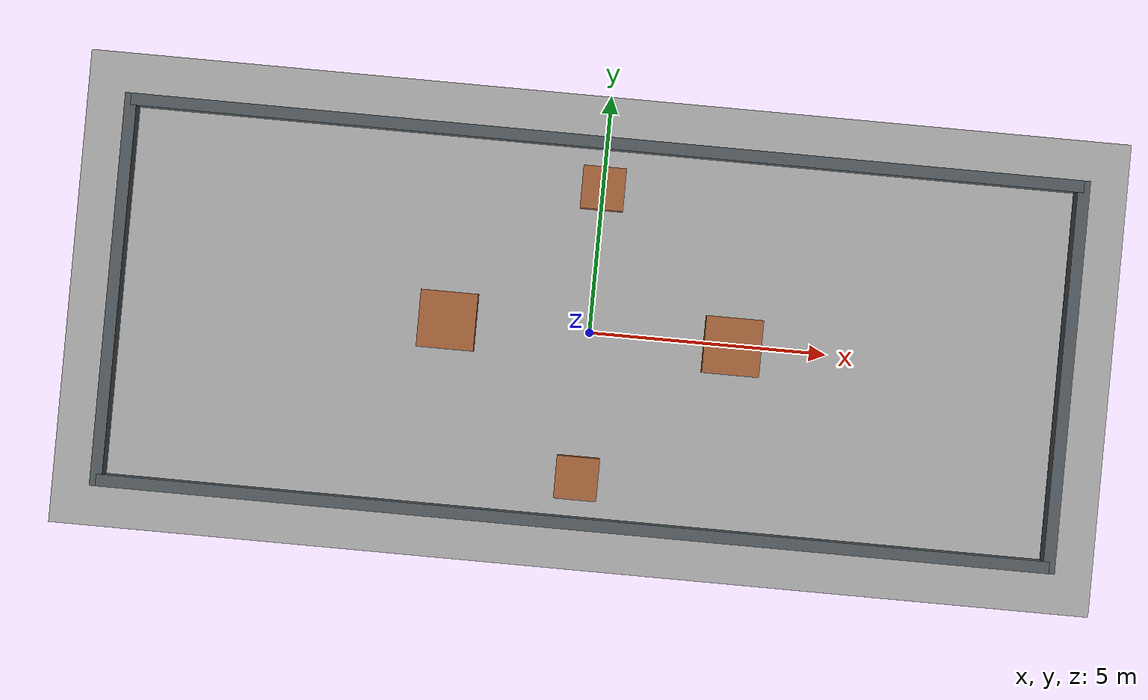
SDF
<?xml version="1.0"?>
<sdf version="1.6">
  <world name="default">
    <gravity>0 0 -9.8</gravity>
    <physics default="0" name="default_physics" type="ode">
      <max_step_size>0.001</max_step_size>
      <real_time_factor>1</real_time_factor>
      <real_time_update_rate>1000</real_time_update_rate>
    </physics>

    <include>
      <uri>model://sun</uri>
    </include>

    <model name="ground_plane">
      <static>true</static>
      <link name="link">
        <collision name="collision">
          <geometry>
            <box>
              <size>22 10 0.02</size>
            </box>
          </geometry>
        </collision>
        <visual name="visual">
          <geometry>
            <box>
              <size>22 10 0.02</size>
            </box>
          </geometry>
          <material>
            <ambient>0.72 0.72 0.72 1</ambient>
            <diffuse>0.72 0.72 0.72 1</diffuse>
          </material>
        </visual>
      </link>
    </model>

    <model name="corridor_wall_north">
      <static>true</static>
      <pose>0 4.00 0.5 0 0 0</pose>
      <link name="link">
        <collision name="collision">
          <geometry>
            <box>
              <size>20 0.25 1.0</size>
            </box>
          </geometry>
        </collision>
        <visual name="visual">
          <geometry>
            <box>
              <size>20 0.25 1.0</size>
            </box>
          </geometry>
          <material>
            <ambient>0.35 0.38 0.40 1</ambient>
            <diffuse>0.35 0.38 0.40 1</diffuse>
          </material>
        </visual>
      </link>
    </model>

    <model name="corridor_wall_south">
      <static>true</static>
      <pose>0 -4.00 0.5 0 0 0</pose>
      <link name="link">
        <collision name="collision">
          <geometry>
            <box>
              <size>20 0.25 1.0</size>
            </box>
          </geometry>
        </collision>
        <visual name="visual">
          <geometry>
            <box>
              <size>20 0.25 1.0</size>
            </box>
          </geometry>
          <material>
            <ambient>0.35 0.38 0.40 1</ambient>
            <diffuse>0.35 0.38 0.40 1</diffuse>
          </material>
        </visual>
      </link>
    </model>

    <model name="corridor_end_west">
      <static>true</static>
      <pose>-10 0 0.5 0 0 0</pose>
      <link name="link">
        <collision name="collision">
          <geometry>
            <box>
              <size>0.25 8.25 1.0</size>
            </box>
          </geometry>
        </collision>
        <visual name="visual">
          <geometry>
            <box>
              <size>0.25 8.25 1.0</size>
            </box>
          </geometry>
          <material>
            <ambient>0.35 0.38 0.40 1</ambient>
            <diffuse>0.35 0.38 0.40 1</diffuse>
          </material>
        </visual>
      </link>
    </model>

    <model name="corridor_end_east">
      <static>true</static>
      <pose>10 0 0.5 0 0 0</pose>
      <link name="link">
        <collision name="collision">
          <geometry>
            <box>
              <size>0.25 8.25 1.0</size>
            </box>
          </geometry>
        </collision>
        <visual name="visual">
          <geometry>
            <box>
              <size>0.25 8.25 1.0</size>
            </box>
          </geometry>
          <material>
            <ambient>0.35 0.38 0.40 1</ambient>
            <diffuse>0.35 0.38 0.40 1</diffuse>
          </material>
        </visual>
      </link>
    </model>

    <model name="obstacle_center_top">
      <static>true</static>
      <pose>-3.0 0.0 0.45 0 0 0</pose>
      <link name="link">
        <collision name="collision">
          <geometry>
            <box>
              <size>1.2 1.2 0.9</size>
            </box>
          </geometry>
        </collision>
        <visual name="visual">
          <geometry>
            <box>
              <size>1.2 1.2 0.9</size>
            </box>
          </geometry>
          <material>
            <ambient>0.70 0.42 0.25 1</ambient>
            <diffuse>0.70 0.42 0.25 1</diffuse>
          </material>
        </visual>
      </link>
    </model>

    <model name="obstacle_center_bottom">
      <static>true</static>
      <pose>3.0 0.0 0.45 0 0 0</pose>
      <link name="link">
        <collision name="collision">
          <geometry>
            <box>
              <size>1.2 1.2 0.9</size>
            </box>
          </geometry>
        </collision>
        <visual name="visual">
          <geometry>
            <box>
              <size>1.2 1.2 0.9</size>
            </box>
          </geometry>
          <material>
            <ambient>0.70 0.42 0.25 1</ambient>
            <diffuse>0.70 0.42 0.25 1</diffuse>
          </material>
        </visual>
      </link>
    </model>

    <model name="obstacle_left_bottom">
      <static>true</static>
      <pose>0.0 -3.05 0.45 0 0 0</pose>
      <link name="link">
        <collision name="collision">
          <geometry>
            <box>
              <size>0.9 0.9 0.9</size>
            </box>
          </geometry>
        </collision>
        <visual name="visual">
          <geometry>
            <box>
              <size>0.9 0.9 0.9</size>
            </box>
          </geometry>
          <material>
            <ambient>0.70 0.42 0.25 1</ambient>
            <diffuse>0.70 0.42 0.25 1</diffuse>
          </material>
        </visual>
      </link>
    </model>

    <model name="obstacle_right_top">
      <static>true</static>
      <pose>0.0 3.05 0.45 0 0 0</pose>
      <link name="link">
        <collision name="collision">
          <geometry>
            <box>
              <size>0.9 0.9 0.9</size>
            </box>
          </geometry>
        </collision>
        <visual name="visual">
          <geometry>
            <box>
              <size>0.9 0.9 0.9</size>
            </box>
          </geometry>
          <material>
            <ambient>0.70 0.42 0.25 1</ambient>
            <diffuse>0.70 0.42 0.25 1</diffuse>
          </material>
        </visual>
      </link>
    </model>
  </world>
</sdf>
